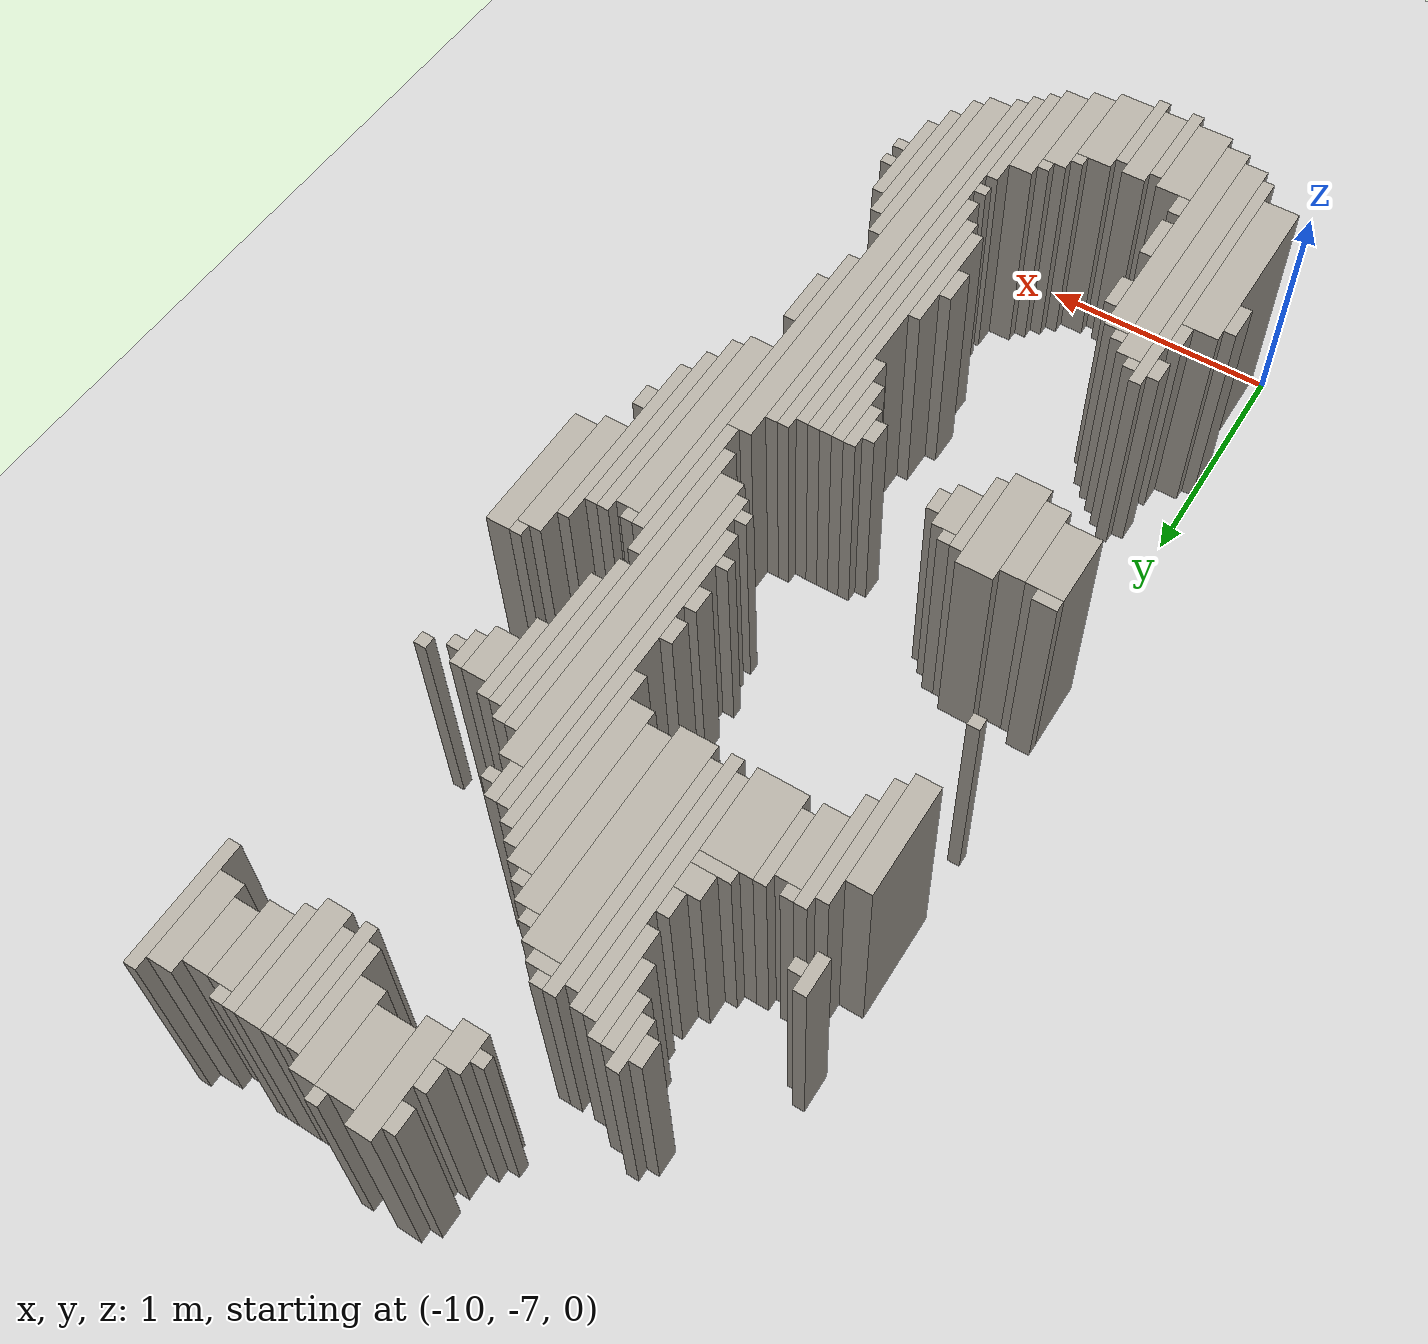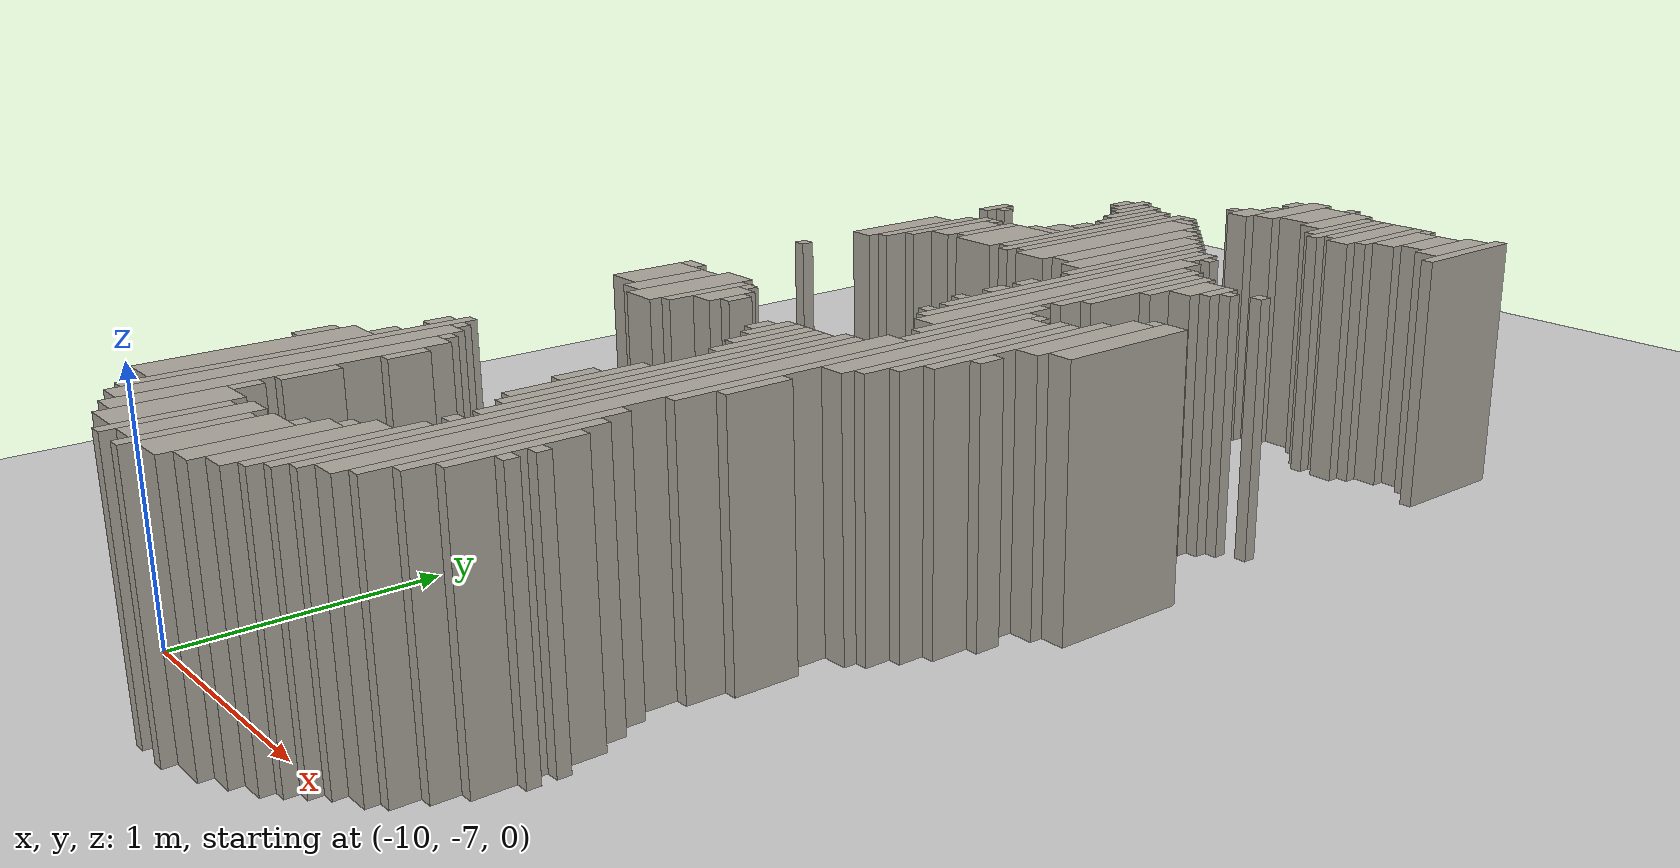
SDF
<sdf version="1.6">
 <world name="fr079_office">
  <include><uri>model://sun</uri></include>
  <include><uri>model://ground_plane</uri></include>
  <model name="fr079_office_walls">
   <static>true</static>
   <link name="w0011">
    <pose>-9.373 -7.106 0.500 0 0 0</pose>
    <collision name="c"><geometry><box><size>0.050 0.400 1.000</size></box></geometry></collision>
    <visual name="v">
     <geometry><box><size>0.050 0.400 1.000</size></box></geometry>
     <material><ambient>0.68 0.66 0.62 1</ambient><diffuse>0.68 0.66 0.62 1</diffuse></material>
    </visual>
   </link>
   <link name="w0012">
    <pose>-9.223 -7.106 0.500 0 0 0</pose>
    <collision name="c"><geometry><box><size>0.050 0.400 1.000</size></box></geometry></collision>
    <visual name="v">
     <geometry><box><size>0.050 0.400 1.000</size></box></geometry>
     <material><ambient>0.68 0.66 0.62 1</ambient><diffuse>0.68 0.66 0.62 1</diffuse></material>
    </visual>
   </link>
   <link name="w0029">
    <pose>-9.473 -7.056 0.500 0 0 0</pose>
    <collision name="c"><geometry><box><size>0.150 0.400 1.000</size></box></geometry></collision>
    <visual name="v">
     <geometry><box><size>0.150 0.400 1.000</size></box></geometry>
     <material><ambient>0.68 0.66 0.62 1</ambient><diffuse>0.68 0.66 0.62 1</diffuse></material>
    </visual>
   </link>
   <link name="w0030">
    <pose>-9.298 -7.056 0.500 0 0 0</pose>
    <collision name="c"><geometry><box><size>0.100 0.400 1.000</size></box></geometry></collision>
    <visual name="v">
     <geometry><box><size>0.100 0.400 1.000</size></box></geometry>
     <material><ambient>0.68 0.66 0.62 1</ambient><diffuse>0.68 0.66 0.62 1</diffuse></material>
    </visual>
   </link>
   <link name="w0031">
    <pose>-9.123 -7.056 0.500 0 0 0</pose>
    <collision name="c"><geometry><box><size>0.150 0.400 1.000</size></box></geometry></collision>
    <visual name="v">
     <geometry><box><size>0.150 0.400 1.000</size></box></geometry>
     <material><ambient>0.68 0.66 0.62 1</ambient><diffuse>0.68 0.66 0.62 1</diffuse></material>
    </visual>
   </link>
   <link name="w0054">
    <pose>-9.598 -6.656 0.500 0 0 0</pose>
    <collision name="c"><geometry><box><size>0.100 1.100 1.000</size></box></geometry></collision>
    <visual name="v">
     <geometry><box><size>0.100 1.100 1.000</size></box></geometry>
     <material><ambient>0.68 0.66 0.62 1</ambient><diffuse>0.68 0.66 0.62 1</diffuse></material>
    </visual>
   </link>
   <link name="w0055">
    <pose>-8.998 -6.981 0.500 0 0 0</pose>
    <collision name="c"><geometry><box><size>0.100 0.450 1.000</size></box></geometry></collision>
    <visual name="v">
     <geometry><box><size>0.100 0.450 1.000</size></box></geometry>
     <material><ambient>0.68 0.66 0.62 1</ambient><diffuse>0.68 0.66 0.62 1</diffuse></material>
    </visual>
   </link>
   <link name="w0081">
    <pose>-9.698 -6.581 0.500 0 0 0</pose>
    <collision name="c"><geometry><box><size>0.100 1.150 1.000</size></box></geometry></collision>
    <visual name="v">
     <geometry><box><size>0.100 1.150 1.000</size></box></geometry>
     <material><ambient>0.68 0.66 0.62 1</ambient><diffuse>0.68 0.66 0.62 1</diffuse></material>
    </visual>
   </link>
   <link name="w0082">
    <pose>-8.898 -6.906 0.500 0 0 0</pose>
    <collision name="c"><geometry><box><size>0.100 0.500 1.000</size></box></geometry></collision>
    <visual name="v">
     <geometry><box><size>0.100 0.500 1.000</size></box></geometry>
     <material><ambient>0.68 0.66 0.62 1</ambient><diffuse>0.68 0.66 0.62 1</diffuse></material>
    </visual>
   </link>
   <link name="w0106">
    <pose>-9.773 -6.506 0.500 0 0 0</pose>
    <collision name="c"><geometry><box><size>0.050 1.200 1.000</size></box></geometry></collision>
    <visual name="v">
     <geometry><box><size>0.050 1.200 1.000</size></box></geometry>
     <material><ambient>0.68 0.66 0.62 1</ambient><diffuse>0.68 0.66 0.62 1</diffuse></material>
    </visual>
   </link>
   <link name="w0107">
    <pose>-8.823 -6.831 0.500 0 0 0</pose>
    <collision name="c"><geometry><box><size>0.050 0.550 1.000</size></box></geometry></collision>
    <visual name="v">
     <geometry><box><size>0.050 0.550 1.000</size></box></geometry>
     <material><ambient>0.68 0.66 0.62 1</ambient><diffuse>0.68 0.66 0.62 1</diffuse></material>
    </visual>
   </link>
   <link name="w0127">
    <pose>-8.773 -6.056 0.500 0 0 0</pose>
    <collision name="c"><geometry><box><size>0.050 2.000 1.000</size></box></geometry></collision>
    <visual name="v">
     <geometry><box><size>0.050 2.000 1.000</size></box></geometry>
     <material><ambient>0.68 0.66 0.62 1</ambient><diffuse>0.68 0.66 0.62 1</diffuse></material>
    </visual>
   </link>
   <link name="w0138">
    <pose>-9.873 -6.631 0.500 0 0 0</pose>
    <collision name="c"><geometry><box><size>0.150 0.750 1.000</size></box></geometry></collision>
    <visual name="v">
     <geometry><box><size>0.150 0.750 1.000</size></box></geometry>
     <material><ambient>0.68 0.66 0.62 1</ambient><diffuse>0.68 0.66 0.62 1</diffuse></material>
    </visual>
   </link>
   <link name="w0139">
    <pose>-8.723 -6.031 0.500 0 0 0</pose>
    <collision name="c"><geometry><box><size>0.050 1.950 1.000</size></box></geometry></collision>
    <visual name="v">
     <geometry><box><size>0.050 1.950 1.000</size></box></geometry>
     <material><ambient>0.68 0.66 0.62 1</ambient><diffuse>0.68 0.66 0.62 1</diffuse></material>
    </visual>
   </link>
   <link name="w0153">
    <pose>-8.648 -5.956 0.500 0 0 0</pose>
    <collision name="c"><geometry><box><size>0.100 2.000 1.000</size></box></geometry></collision>
    <visual name="v">
     <geometry><box><size>0.100 2.000 1.000</size></box></geometry>
     <material><ambient>0.68 0.66 0.62 1</ambient><diffuse>0.68 0.66 0.62 1</diffuse></material>
    </visual>
   </link>
   <link name="w0163">
    <pose>-8.573 -6.481 0.500 0 0 0</pose>
    <collision name="c"><geometry><box><size>0.050 0.850 1.000</size></box></geometry></collision>
    <visual name="v">
     <geometry><box><size>0.050 0.850 1.000</size></box></geometry>
     <material><ambient>0.68 0.66 0.62 1</ambient><diffuse>0.68 0.66 0.62 1</diffuse></material>
    </visual>
   </link>
   <link name="w0180">
    <pose>-9.523 -6.806 0.500 0 0 0</pose>
    <collision name="c"><geometry><box><size>0.050 0.100 1.000</size></box></geometry></collision>
    <visual name="v">
     <geometry><box><size>0.050 0.100 1.000</size></box></geometry>
     <material><ambient>0.68 0.66 0.62 1</ambient><diffuse>0.68 0.66 0.62 1</diffuse></material>
    </visual>
   </link>
   <link name="w0181">
    <pose>-9.073 -6.831 0.500 0 0 0</pose>
    <collision name="c"><geometry><box><size>0.050 0.050 1.000</size></box></geometry></collision>
    <visual name="v">
     <geometry><box><size>0.050 0.050 1.000</size></box></geometry>
     <material><ambient>0.68 0.66 0.62 1</ambient><diffuse>0.68 0.66 0.62 1</diffuse></material>
    </visual>
   </link>
   <link name="w0200">
    <pose>-8.523 -6.481 0.500 0 0 0</pose>
    <collision name="c"><geometry><box><size>0.050 0.650 1.000</size></box></geometry></collision>
    <visual name="v">
     <geometry><box><size>0.050 0.650 1.000</size></box></geometry>
     <material><ambient>0.68 0.66 0.62 1</ambient><diffuse>0.68 0.66 0.62 1</diffuse></material>
    </visual>
   </link>
   <link name="w0214">
    <pose>-8.973 -6.731 0.500 0 0 0</pose>
    <collision name="c"><geometry><box><size>0.050 0.050 1.000</size></box></geometry></collision>
    <visual name="v">
     <geometry><box><size>0.050 0.050 1.000</size></box></geometry>
     <material><ambient>0.68 0.66 0.62 1</ambient><diffuse>0.68 0.66 0.62 1</diffuse></material>
    </visual>
   </link>
   <link name="w0235">
    <pose>-9.523 -6.606 0.500 0 0 0</pose>
    <collision name="c"><geometry><box><size>0.050 0.200 1.000</size></box></geometry></collision>
    <visual name="v">
     <geometry><box><size>0.050 0.200 1.000</size></box></geometry>
     <material><ambient>0.68 0.66 0.62 1</ambient><diffuse>0.68 0.66 0.62 1</diffuse></material>
    </visual>
   </link>
   <link name="w0236">
    <pose>-8.473 -6.481 0.500 0 0 0</pose>
    <collision name="c"><geometry><box><size>0.050 0.450 1.000</size></box></geometry></collision>
    <visual name="v">
     <geometry><box><size>0.050 0.450 1.000</size></box></geometry>
     <material><ambient>0.68 0.66 0.62 1</ambient><diffuse>0.68 0.66 0.62 1</diffuse></material>
    </visual>
   </link>
   <link name="w0270">
    <pose>-8.423 -6.531 0.500 0 0 0</pose>
    <collision name="c"><geometry><box><size>0.050 0.050 1.000</size></box></geometry></collision>
    <visual name="v">
     <geometry><box><size>0.050 0.050 1.000</size></box></geometry>
     <material><ambient>0.68 0.66 0.62 1</ambient><diffuse>0.68 0.66 0.62 1</diffuse></material>
    </visual>
   </link>
   <link name="w0283">
    <pose>-8.823 -6.481 0.500 0 0 0</pose>
    <collision name="c"><geometry><box><size>0.050 0.050 1.000</size></box></geometry></collision>
    <visual name="v">
     <geometry><box><size>0.050 0.050 1.000</size></box></geometry>
     <material><ambient>0.68 0.66 0.62 1</ambient><diffuse>0.68 0.66 0.62 1</diffuse></material>
    </visual>
   </link>
   <link name="w0300">
    <pose>-9.973 -6.381 0.500 0 0 0</pose>
    <collision name="c"><geometry><box><size>0.050 0.150 1.000</size></box></geometry></collision>
    <visual name="v">
     <geometry><box><size>0.050 0.150 1.000</size></box></geometry>
     <material><ambient>0.68 0.66 0.62 1</ambient><diffuse>0.68 0.66 0.62 1</diffuse></material>
    </visual>
   </link>
   <link name="w0301">
    <pose>-8.423 -6.431 0.500 0 0 0</pose>
    <collision name="c"><geometry><box><size>0.050 0.050 1.000</size></box></geometry></collision>
    <visual name="v">
     <geometry><box><size>0.050 0.050 1.000</size></box></geometry>
     <material><ambient>0.68 0.66 0.62 1</ambient><diffuse>0.68 0.66 0.62 1</diffuse></material>
    </visual>
   </link>
   <link name="w0318">
    <pose>-8.823 -5.756 0.500 0 0 0</pose>
    <collision name="c"><geometry><box><size>0.050 1.300 1.000</size></box></geometry></collision>
    <visual name="v">
     <geometry><box><size>0.050 1.300 1.000</size></box></geometry>
     <material><ambient>0.68 0.66 0.62 1</ambient><diffuse>0.68 0.66 0.62 1</diffuse></material>
    </visual>
   </link>
   <link name="w0338">
    <pose>-9.523 -6.281 0.500 0 0 0</pose>
    <collision name="c"><geometry><box><size>0.050 0.150 1.000</size></box></geometry></collision>
    <visual name="v">
     <geometry><box><size>0.050 0.150 1.000</size></box></geometry>
     <material><ambient>0.68 0.66 0.62 1</ambient><diffuse>0.68 0.66 0.62 1</diffuse></material>
    </visual>
   </link>
   <link name="w0352">
    <pose>-8.873 -5.706 0.500 0 0 0</pose>
    <collision name="c"><geometry><box><size>0.050 1.200 1.000</size></box></geometry></collision>
    <visual name="v">
     <geometry><box><size>0.050 1.200 1.000</size></box></geometry>
     <material><ambient>0.68 0.66 0.62 1</ambient><diffuse>0.68 0.66 0.62 1</diffuse></material>
    </visual>
   </link>
   <link name="w0361">
    <pose>-9.823 -6.206 0.500 0 0 0</pose>
    <collision name="c"><geometry><box><size>0.050 0.100 1.000</size></box></geometry></collision>
    <visual name="v">
     <geometry><box><size>0.050 0.100 1.000</size></box></geometry>
     <material><ambient>0.68 0.66 0.62 1</ambient><diffuse>0.68 0.66 0.62 1</diffuse></material>
    </visual>
   </link>
   <link name="w0362">
    <pose>-8.923 -6.006 0.500 0 0 0</pose>
    <collision name="c"><geometry><box><size>0.050 0.500 1.000</size></box></geometry></collision>
    <visual name="v">
     <geometry><box><size>0.050 0.500 1.000</size></box></geometry>
     <material><ambient>0.68 0.66 0.62 1</ambient><diffuse>0.68 0.66 0.62 1</diffuse></material>
    </visual>
   </link>
   <link name="w0394">
    <pose>-9.623 -6.081 0.500 0 0 0</pose>
    <collision name="c"><geometry><box><size>0.050 0.050 1.000</size></box></geometry></collision>
    <visual name="v">
     <geometry><box><size>0.050 0.050 1.000</size></box></geometry>
     <material><ambient>0.68 0.66 0.62 1</ambient><diffuse>0.68 0.66 0.62 1</diffuse></material>
    </visual>
   </link>
   <link name="w0406">
    <pose>-9.823 -6.006 0.500 0 0 0</pose>
    <collision name="c"><geometry><box><size>0.050 0.100 1.000</size></box></geometry></collision>
    <visual name="v">
     <geometry><box><size>0.050 0.100 1.000</size></box></geometry>
     <material><ambient>0.68 0.66 0.62 1</ambient><diffuse>0.68 0.66 0.62 1</diffuse></material>
    </visual>
   </link>
   <link name="w0407">
    <pose>-8.973 -5.981 0.500 0 0 0</pose>
    <collision name="c"><geometry><box><size>0.050 0.150 1.000</size></box></geometry></collision>
    <visual name="v">
     <geometry><box><size>0.050 0.150 1.000</size></box></geometry>
     <material><ambient>0.68 0.66 0.62 1</ambient><diffuse>0.68 0.66 0.62 1</diffuse></material>
    </visual>
   </link>
   <link name="w0421">
    <pose>-9.723 -5.981 0.500 0 0 0</pose>
    <collision name="c"><geometry><box><size>0.050 0.050 1.000</size></box></geometry></collision>
    <visual name="v">
     <geometry><box><size>0.050 0.050 1.000</size></box></geometry>
     <material><ambient>0.68 0.66 0.62 1</ambient><diffuse>0.68 0.66 0.62 1</diffuse></material>
    </visual>
   </link>
   <link name="w0449">
    <pose>-8.573 -5.156 0.500 0 0 0</pose>
    <collision name="c"><geometry><box><size>0.050 1.500 1.000</size></box></geometry></collision>
    <visual name="v">
     <geometry><box><size>0.050 1.500 1.000</size></box></geometry>
     <material><ambient>0.68 0.66 0.62 1</ambient><diffuse>0.68 0.66 0.62 1</diffuse></material>
    </visual>
   </link>
   <link name="w0493">
    <pose>-8.523 -5.631 0.500 0 0 0</pose>
    <collision name="c"><geometry><box><size>0.050 0.250 1.000</size></box></geometry></collision>
    <visual name="v">
     <geometry><box><size>0.050 0.250 1.000</size></box></geometry>
     <material><ambient>0.68 0.66 0.62 1</ambient><diffuse>0.68 0.66 0.62 1</diffuse></material>
    </visual>
   </link>
   <link name="w0555">
    <pose>-8.923 -5.306 0.500 0 0 0</pose>
    <collision name="c"><geometry><box><size>0.050 0.400 1.000</size></box></geometry></collision>
    <visual name="v">
     <geometry><box><size>0.050 0.400 1.000</size></box></geometry>
     <material><ambient>0.68 0.66 0.62 1</ambient><diffuse>0.68 0.66 0.62 1</diffuse></material>
    </visual>
   </link>
   <link name="w0574">
    <pose>-8.973 -5.256 0.500 0 0 0</pose>
    <collision name="c"><geometry><box><size>0.050 0.300 1.000</size></box></geometry></collision>
    <visual name="v">
     <geometry><box><size>0.050 0.300 1.000</size></box></geometry>
     <material><ambient>0.68 0.66 0.62 1</ambient><diffuse>0.68 0.66 0.62 1</diffuse></material>
    </visual>
   </link>
   <link name="w0587">
    <pose>-8.498 -4.906 0.500 0 0 0</pose>
    <collision name="c"><geometry><box><size>0.100 0.900 1.000</size></box></geometry></collision>
    <visual name="v">
     <geometry><box><size>0.100 0.900 1.000</size></box></geometry>
     <material><ambient>0.68 0.66 0.62 1</ambient><diffuse>0.68 0.66 0.62 1</diffuse></material>
    </visual>
   </link>
   <link name="w0602">
    <pose>-9.673 -5.081 0.500 0 0 0</pose>
    <collision name="c"><geometry><box><size>0.150 0.450 1.000</size></box></geometry></collision>
    <visual name="v">
     <geometry><box><size>0.150 0.450 1.000</size></box></geometry>
     <material><ambient>0.68 0.66 0.62 1</ambient><diffuse>0.68 0.66 0.62 1</diffuse></material>
    </visual>
   </link>
   <link name="w0603">
    <pose>-9.023 -5.206 0.500 0 0 0</pose>
    <collision name="c"><geometry><box><size>0.050 0.200 1.000</size></box></geometry></collision>
    <visual name="v">
     <geometry><box><size>0.050 0.200 1.000</size></box></geometry>
     <material><ambient>0.68 0.66 0.62 1</ambient><diffuse>0.68 0.66 0.62 1</diffuse></material>
    </visual>
   </link>
   <link name="w0604">
    <pose>-8.423 -4.856 0.500 0 0 0</pose>
    <collision name="c"><geometry><box><size>0.050 0.900 1.000</size></box></geometry></collision>
    <visual name="v">
     <geometry><box><size>0.050 0.900 1.000</size></box></geometry>
     <material><ambient>0.68 0.66 0.62 1</ambient><diffuse>0.68 0.66 0.62 1</diffuse></material>
    </visual>
   </link>
   <link name="w0615">
    <pose>-9.798 -5.081 0.500 0 0 0</pose>
    <collision name="c"><geometry><box><size>0.100 0.350 1.000</size></box></geometry></collision>
    <visual name="v">
     <geometry><box><size>0.100 0.350 1.000</size></box></geometry>
     <material><ambient>0.68 0.66 0.62 1</ambient><diffuse>0.68 0.66 0.62 1</diffuse></material>
    </visual>
   </link>
   <link name="w0616">
    <pose>-9.573 -5.081 0.500 0 0 0</pose>
    <collision name="c"><geometry><box><size>0.050 0.350 1.000</size></box></geometry></collision>
    <visual name="v">
     <geometry><box><size>0.050 0.350 1.000</size></box></geometry>
     <material><ambient>0.68 0.66 0.62 1</ambient><diffuse>0.68 0.66 0.62 1</diffuse></material>
    </visual>
   </link>
   <link name="w0617">
    <pose>-9.073 -5.206 0.500 0 0 0</pose>
    <collision name="c"><geometry><box><size>0.050 0.100 1.000</size></box></geometry></collision>
    <visual name="v">
     <geometry><box><size>0.050 0.100 1.000</size></box></geometry>
     <material><ambient>0.68 0.66 0.62 1</ambient><diffuse>0.68 0.66 0.62 1</diffuse></material>
    </visual>
   </link>
   <link name="w0632">
    <pose>-9.923 -5.056 0.500 0 0 0</pose>
    <collision name="c"><geometry><box><size>0.150 0.300 1.000</size></box></geometry></collision>
    <visual name="v">
     <geometry><box><size>0.150 0.300 1.000</size></box></geometry>
     <material><ambient>0.68 0.66 0.62 1</ambient><diffuse>0.68 0.66 0.62 1</diffuse></material>
    </visual>
   </link>
   <link name="w0633">
    <pose>-8.373 -4.806 0.500 0 0 0</pose>
    <collision name="c"><geometry><box><size>0.050 0.800 1.000</size></box></geometry></collision>
    <visual name="v">
     <geometry><box><size>0.050 0.800 1.000</size></box></geometry>
     <material><ambient>0.68 0.66 0.62 1</ambient><diffuse>0.68 0.66 0.62 1</diffuse></material>
    </visual>
   </link>
   <link name="w0649">
    <pose>-9.498 -5.056 0.500 0 0 0</pose>
    <collision name="c"><geometry><box><size>0.100 0.200 1.000</size></box></geometry></collision>
    <visual name="v">
     <geometry><box><size>0.100 0.200 1.000</size></box></geometry>
     <material><ambient>0.68 0.66 0.62 1</ambient><diffuse>0.68 0.66 0.62 1</diffuse></material>
    </visual>
   </link>
   <link name="w0660">
    <pose>-9.423 -5.056 0.500 0 0 0</pose>
    <collision name="c"><geometry><box><size>0.050 0.100 1.000</size></box></geometry></collision>
    <visual name="v">
     <geometry><box><size>0.050 0.100 1.000</size></box></geometry>
     <material><ambient>0.68 0.66 0.62 1</ambient><diffuse>0.68 0.66 0.62 1</diffuse></material>
    </visual>
   </link>
   <link name="w0661">
    <pose>-8.323 -4.706 0.500 0 0 0</pose>
    <collision name="c"><geometry><box><size>0.050 0.800 1.000</size></box></geometry></collision>
    <visual name="v">
     <geometry><box><size>0.050 0.800 1.000</size></box></geometry>
     <material><ambient>0.68 0.66 0.62 1</ambient><diffuse>0.68 0.66 0.62 1</diffuse></material>
    </visual>
   </link>
   <link name="w0690">
    <pose>-9.523 -4.931 0.500 0 0 0</pose>
    <collision name="c"><geometry><box><size>0.050 0.050 1.000</size></box></geometry></collision>
    <visual name="v">
     <geometry><box><size>0.050 0.050 1.000</size></box></geometry>
     <material><ambient>0.68 0.66 0.62 1</ambient><diffuse>0.68 0.66 0.62 1</diffuse></material>
    </visual>
   </link>
   <link name="w0691">
    <pose>-8.623 -4.631 0.500 0 0 0</pose>
    <collision name="c"><geometry><box><size>0.050 0.650 1.000</size></box></geometry></collision>
    <visual name="v">
     <geometry><box><size>0.050 0.650 1.000</size></box></geometry>
     <material><ambient>0.68 0.66 0.62 1</ambient><diffuse>0.68 0.66 0.62 1</diffuse></material>
    </visual>
   </link>
   <link name="w0692">
    <pose>-8.273 -4.906 0.500 0 0 0</pose>
    <collision name="c"><geometry><box><size>0.050 0.100 1.000</size></box></geometry></collision>
    <visual name="v">
     <geometry><box><size>0.050 0.100 1.000</size></box></geometry>
     <material><ambient>0.68 0.66 0.62 1</ambient><diffuse>0.68 0.66 0.62 1</diffuse></material>
    </visual>
   </link>
   <link name="w0701">
    <pose>-9.948 -4.881 0.500 0 0 0</pose>
    <collision name="c"><geometry><box><size>0.100 0.050 1.000</size></box></geometry></collision>
    <visual name="v">
     <geometry><box><size>0.100 0.050 1.000</size></box></geometry>
     <material><ambient>0.68 0.66 0.62 1</ambient><diffuse>0.68 0.66 0.62 1</diffuse></material>
    </visual>
   </link>
   <link name="w0714">
    <pose>-8.673 -4.181 0.500 0 0 0</pose>
    <collision name="c"><geometry><box><size>0.050 1.350 1.000</size></box></geometry></collision>
    <visual name="v">
     <geometry><box><size>0.050 1.350 1.000</size></box></geometry>
     <material><ambient>0.68 0.66 0.62 1</ambient><diffuse>0.68 0.66 0.62 1</diffuse></material>
    </visual>
   </link>
   <link name="w0739">
    <pose>-8.748 -4.081 0.500 0 0 0</pose>
    <collision name="c"><geometry><box><size>0.100 1.350 1.000</size></box></geometry></collision>
    <visual name="v">
     <geometry><box><size>0.100 1.350 1.000</size></box></geometry>
     <material><ambient>0.68 0.66 0.62 1</ambient><diffuse>0.68 0.66 0.62 1</diffuse></material>
    </visual>
   </link>
   <link name="w0740">
    <pose>-8.248 -4.481 0.500 0 0 0</pose>
    <collision name="c"><geometry><box><size>0.100 0.550 1.000</size></box></geometry></collision>
    <visual name="v">
     <geometry><box><size>0.100 0.550 1.000</size></box></geometry>
     <material><ambient>0.68 0.66 0.62 1</ambient><diffuse>0.68 0.66 0.62 1</diffuse></material>
    </visual>
   </link>
   <link name="w0753">
    <pose>-8.823 -3.981 0.500 0 0 0</pose>
    <collision name="c"><geometry><box><size>0.050 1.450 1.000</size></box></geometry></collision>
    <visual name="v">
     <geometry><box><size>0.050 1.450 1.000</size></box></geometry>
     <material><ambient>0.68 0.66 0.62 1</ambient><diffuse>0.68 0.66 0.62 1</diffuse></material>
    </visual>
   </link>
   <link name="w0754">
    <pose>-8.148 -4.431 0.500 0 0 0</pose>
    <collision name="c"><geometry><box><size>0.100 0.550 1.000</size></box></geometry></collision>
    <visual name="v">
     <geometry><box><size>0.100 0.550 1.000</size></box></geometry>
     <material><ambient>0.68 0.66 0.62 1</ambient><diffuse>0.68 0.66 0.62 1</diffuse></material>
    </visual>
   </link>
   <link name="w0766">
    <pose>-8.873 -4.631 0.500 0 0 0</pose>
    <collision name="c"><geometry><box><size>0.050 0.050 1.000</size></box></geometry></collision>
    <visual name="v">
     <geometry><box><size>0.050 0.050 1.000</size></box></geometry>
     <material><ambient>0.68 0.66 0.62 1</ambient><diffuse>0.68 0.66 0.62 1</diffuse></material>
    </visual>
   </link>
   <link name="w0800">
    <pose>-8.873 -3.881 0.500 0 0 0</pose>
    <collision name="c"><geometry><box><size>0.050 1.350 1.000</size></box></geometry></collision>
    <visual name="v">
     <geometry><box><size>0.050 1.350 1.000</size></box></geometry>
     <material><ambient>0.68 0.66 0.62 1</ambient><diffuse>0.68 0.66 0.62 1</diffuse></material>
    </visual>
   </link>
   <link name="w0833">
    <pose>-8.923 -4.431 0.500 0 0 0</pose>
    <collision name="c"><geometry><box><size>0.050 0.050 1.000</size></box></geometry></collision>
    <visual name="v">
     <geometry><box><size>0.050 0.050 1.000</size></box></geometry>
     <material><ambient>0.68 0.66 0.62 1</ambient><diffuse>0.68 0.66 0.62 1</diffuse></material>
    </visual>
   </link>
   <link name="w0834">
    <pose>-8.523 -4.431 0.500 0 0 0</pose>
    <collision name="c"><geometry><box><size>0.050 0.050 1.000</size></box></geometry></collision>
    <visual name="v">
     <geometry><box><size>0.050 0.050 1.000</size></box></geometry>
     <material><ambient>0.68 0.66 0.62 1</ambient><diffuse>0.68 0.66 0.62 1</diffuse></material>
    </visual>
   </link>
   <link name="w0862">
    <pose>-9.973 -4.331 0.500 0 0 0</pose>
    <collision name="c"><geometry><box><size>0.050 0.050 1.000</size></box></geometry></collision>
    <visual name="v">
     <geometry><box><size>0.050 0.050 1.000</size></box></geometry>
     <material><ambient>0.68 0.66 0.62 1</ambient><diffuse>0.68 0.66 0.62 1</diffuse></material>
    </visual>
   </link>
   <link name="w0876">
    <pose>-8.923 -4.256 0.500 0 0 0</pose>
    <collision name="c"><geometry><box><size>0.050 0.100 1.000</size></box></geometry></collision>
    <visual name="v">
     <geometry><box><size>0.050 0.100 1.000</size></box></geometry>
     <material><ambient>0.68 0.66 0.62 1</ambient><diffuse>0.68 0.66 0.62 1</diffuse></material>
    </visual>
   </link>
   <link name="w0888">
    <pose>-8.623 -3.881 0.500 0 0 0</pose>
    <collision name="c"><geometry><box><size>0.050 0.750 1.000</size></box></geometry></collision>
    <visual name="v">
     <geometry><box><size>0.050 0.750 1.000</size></box></geometry>
     <material><ambient>0.68 0.66 0.62 1</ambient><diffuse>0.68 0.66 0.62 1</diffuse></material>
    </visual>
   </link>
   <link name="w0907">
    <pose>-8.223 -4.181 0.500 0 0 0</pose>
    <collision name="c"><geometry><box><size>0.050 0.050 1.000</size></box></geometry></collision>
    <visual name="v">
     <geometry><box><size>0.050 0.050 1.000</size></box></geometry>
     <material><ambient>0.68 0.66 0.62 1</ambient><diffuse>0.68 0.66 0.62 1</diffuse></material>
    </visual>
   </link>
   <link name="w0925">
    <pose>-8.923 -4.106 0.500 0 0 0</pose>
    <collision name="c"><geometry><box><size>0.050 0.100 1.000</size></box></geometry></collision>
    <visual name="v">
     <geometry><box><size>0.050 0.100 1.000</size></box></geometry>
     <material><ambient>0.68 0.66 0.62 1</ambient><diffuse>0.68 0.66 0.62 1</diffuse></material>
    </visual>
   </link>
   <link name="w0926">
    <pose>-8.573 -3.856 0.500 0 0 0</pose>
    <collision name="c"><geometry><box><size>0.050 0.600 1.000</size></box></geometry></collision>
    <visual name="v">
     <geometry><box><size>0.050 0.600 1.000</size></box></geometry>
     <material><ambient>0.68 0.66 0.62 1</ambient><diffuse>0.68 0.66 0.62 1</diffuse></material>
    </visual>
   </link>
   <link name="w0954">
    <pose>-9.948 -3.831 0.500 0 0 0</pose>
    <collision name="c"><geometry><box><size>0.100 0.450 1.000</size></box></geometry></collision>
    <visual name="v">
     <geometry><box><size>0.100 0.450 1.000</size></box></geometry>
     <material><ambient>0.68 0.66 0.62 1</ambient><diffuse>0.68 0.66 0.62 1</diffuse></material>
    </visual>
   </link>
   <link name="w0962">
    <pose>-9.873 -3.756 0.500 0 0 0</pose>
    <collision name="c"><geometry><box><size>0.050 0.500 1.000</size></box></geometry></collision>
    <visual name="v">
     <geometry><box><size>0.050 0.500 1.000</size></box></geometry>
     <material><ambient>0.68 0.66 0.62 1</ambient><diffuse>0.68 0.66 0.62 1</diffuse></material>
    </visual>
   </link>
   <link name="w0992">
    <pose>-9.823 -3.681 0.500 0 0 0</pose>
    <collision name="c"><geometry><box><size>0.050 0.450 1.000</size></box></geometry></collision>
    <visual name="v">
     <geometry><box><size>0.050 0.450 1.000</size></box></geometry>
     <material><ambient>0.68 0.66 0.62 1</ambient><diffuse>0.68 0.66 0.62 1</diffuse></material>
    </visual>
   </link>
   <link name="w0993">
    <pose>-8.923 -3.531 0.500 0 0 0</pose>
    <collision name="c"><geometry><box><size>0.050 0.750 1.000</size></box></geometry></collision>
    <visual name="v">
     <geometry><box><size>0.050 0.750 1.000</size></box></geometry>
     <material><ambient>0.68 0.66 0.62 1</ambient><diffuse>0.68 0.66 0.62 1</diffuse></material>
    </visual>
   </link>
   <link name="w0994">
    <pose>-8.523 -3.731 0.500 0 0 0</pose>
    <collision name="c"><geometry><box><size>0.050 0.350 1.000</size></box></geometry></collision>
    <visual name="v">
     <geometry><box><size>0.050 0.350 1.000</size></box></geometry>
     <material><ambient>0.68 0.66 0.62 1</ambient><diffuse>0.68 0.66 0.62 1</diffuse></material>
    </visual>
   </link>
   <link name="w1016">
    <pose>-9.748 -3.656 0.500 0 0 0</pose>
    <collision name="c"><geometry><box><size>0.100 0.300 1.000</size></box></geometry></collision>
    <visual name="v">
     <geometry><box><size>0.100 0.300 1.000</size></box></geometry>
     <material><ambient>0.68 0.66 0.62 1</ambient><diffuse>0.68 0.66 0.62 1</diffuse></material>
    </visual>
   </link>
   <link name="w1017">
    <pose>-9.548 -3.631 0.500 0 0 0</pose>
    <collision name="c"><geometry><box><size>0.200 0.350 1.000</size></box></geometry></collision>
    <visual name="v">
     <geometry><box><size>0.200 0.350 1.000</size></box></geometry>
     <material><ambient>0.68 0.66 0.62 1</ambient><diffuse>0.68 0.66 0.62 1</diffuse></material>
    </visual>
   </link>
   <link name="w1018">
    <pose>-9.373 -3.331 0.500 0 0 0</pose>
    <collision name="c"><geometry><box><size>0.050 0.950 1.000</size></box></geometry></collision>
    <visual name="v">
     <geometry><box><size>0.050 0.950 1.000</size></box></geometry>
     <material><ambient>0.68 0.66 0.62 1</ambient><diffuse>0.68 0.66 0.62 1</diffuse></material>
    </visual>
   </link>
   <link name="w1019">
    <pose>-9.223 -3.356 0.500 0 0 0</pose>
    <collision name="c"><geometry><box><size>0.150 0.900 1.000</size></box></geometry></collision>
    <visual name="v">
     <geometry><box><size>0.150 0.900 1.000</size></box></geometry>
     <material><ambient>0.68 0.66 0.62 1</ambient><diffuse>0.68 0.66 0.62 1</diffuse></material>
    </visual>
   </link>
   <link name="w1020">
    <pose>-8.998 -3.456 0.500 0 0 0</pose>
    <collision name="c"><geometry><box><size>0.100 0.700 1.000</size></box></geometry></collision>
    <visual name="v">
     <geometry><box><size>0.100 0.700 1.000</size></box></geometry>
     <material><ambient>0.68 0.66 0.62 1</ambient><diffuse>0.68 0.66 0.62 1</diffuse></material>
    </visual>
   </link>
   <link name="w1021">
    <pose>-8.448 -3.706 0.500 0 0 0</pose>
    <collision name="c"><geometry><box><size>0.100 0.200 1.000</size></box></geometry></collision>
    <visual name="v">
     <geometry><box><size>0.100 0.200 1.000</size></box></geometry>
     <material><ambient>0.68 0.66 0.62 1</ambient><diffuse>0.68 0.66 0.62 1</diffuse></material>
    </visual>
   </link>
   <link name="w1027">
    <pose>-9.673 -3.606 0.500 0 0 0</pose>
    <collision name="c"><geometry><box><size>0.050 0.300 1.000</size></box></geometry></collision>
    <visual name="v">
     <geometry><box><size>0.050 0.300 1.000</size></box></geometry>
     <material><ambient>0.68 0.66 0.62 1</ambient><diffuse>0.68 0.66 0.62 1</diffuse></material>
    </visual>
   </link>
   <link name="w1028">
    <pose>-9.423 -3.281 0.500 0 0 0</pose>
    <collision name="c"><geometry><box><size>0.050 0.950 1.000</size></box></geometry></collision>
    <visual name="v">
     <geometry><box><size>0.050 0.950 1.000</size></box></geometry>
     <material><ambient>0.68 0.66 0.62 1</ambient><diffuse>0.68 0.66 0.62 1</diffuse></material>
    </visual>
   </link>
   <link name="w1029">
    <pose>-9.323 -3.281 0.500 0 0 0</pose>
    <collision name="c"><geometry><box><size>0.050 0.950 1.000</size></box></geometry></collision>
    <visual name="v">
     <geometry><box><size>0.050 0.950 1.000</size></box></geometry>
     <material><ambient>0.68 0.66 0.62 1</ambient><diffuse>0.68 0.66 0.62 1</diffuse></material>
    </visual>
   </link>
   <link name="w1030">
    <pose>-9.098 -3.381 0.500 0 0 0</pose>
    <collision name="c"><geometry><box><size>0.100 0.750 1.000</size></box></geometry></collision>
    <visual name="v">
     <geometry><box><size>0.100 0.750 1.000</size></box></geometry>
     <material><ambient>0.68 0.66 0.62 1</ambient><diffuse>0.68 0.66 0.62 1</diffuse></material>
    </visual>
   </link>
   <link name="w1031">
    <pose>-8.373 -3.681 0.500 0 0 0</pose>
    <collision name="c"><geometry><box><size>0.050 0.150 1.000</size></box></geometry></collision>
    <visual name="v">
     <geometry><box><size>0.050 0.150 1.000</size></box></geometry>
     <material><ambient>0.68 0.66 0.62 1</ambient><diffuse>0.68 0.66 0.62 1</diffuse></material>
    </visual>
   </link>
   <link name="w1042">
    <pose>-8.323 -3.681 0.500 0 0 0</pose>
    <collision name="c"><geometry><box><size>0.050 0.050 1.000</size></box></geometry></collision>
    <visual name="v">
     <geometry><box><size>0.050 0.050 1.000</size></box></geometry>
     <material><ambient>0.68 0.66 0.62 1</ambient><diffuse>0.68 0.66 0.62 1</diffuse></material>
    </visual>
   </link>
   <link name="w1056">
    <pose>-8.223 -3.631 0.500 0 0 0</pose>
    <collision name="c"><geometry><box><size>0.050 0.050 1.000</size></box></geometry></collision>
    <visual name="v">
     <geometry><box><size>0.050 0.050 1.000</size></box></geometry>
     <material><ambient>0.68 0.66 0.62 1</ambient><diffuse>0.68 0.66 0.62 1</diffuse></material>
    </visual>
   </link>
   <link name="w1080">
    <pose>-9.773 -3.481 0.500 0 0 0</pose>
    <collision name="c"><geometry><box><size>0.050 0.050 1.000</size></box></geometry></collision>
    <visual name="v">
     <geometry><box><size>0.050 0.050 1.000</size></box></geometry>
     <material><ambient>0.68 0.66 0.62 1</ambient><diffuse>0.68 0.66 0.62 1</diffuse></material>
    </visual>
   </link>
   <link name="w1089">
    <pose>-9.523 -3.431 0.500 0 0 0</pose>
    <collision name="c"><geometry><box><size>0.150 0.050 1.000</size></box></geometry></collision>
    <visual name="v">
     <geometry><box><size>0.150 0.050 1.000</size></box></geometry>
     <material><ambient>0.68 0.66 0.62 1</ambient><diffuse>0.68 0.66 0.62 1</diffuse></material>
    </visual>
   </link>
   <link name="w1095">
    <pose>-9.498 -3.356 0.500 0 0 0</pose>
    <collision name="c"><geometry><box><size>0.100 0.100 1.000</size></box></geometry></collision>
    <visual name="v">
     <geometry><box><size>0.100 0.100 1.000</size></box></geometry>
     <material><ambient>0.68 0.66 0.62 1</ambient><diffuse>0.68 0.66 0.62 1</diffuse></material>
    </visual>
   </link>
   <link name="w1096">
    <pose>-8.773 -3.331 0.500 0 0 0</pose>
    <collision name="c"><geometry><box><size>0.050 0.150 1.000</size></box></geometry></collision>
    <visual name="v">
     <geometry><box><size>0.050 0.150 1.000</size></box></geometry>
     <material><ambient>0.68 0.66 0.62 1</ambient><diffuse>0.68 0.66 0.62 1</diffuse></material>
    </visual>
   </link>
   <link name="w1103">
    <pose>-9.973 -3.281 0.500 0 0 0</pose>
    <collision name="c"><geometry><box><size>0.050 0.150 1.000</size></box></geometry></collision>
    <visual name="v">
     <geometry><box><size>0.050 0.150 1.000</size></box></geometry>
     <material><ambient>0.68 0.66 0.62 1</ambient><diffuse>0.68 0.66 0.62 1</diffuse></material>
    </visual>
   </link>
   <link name="w1104">
    <pose>-8.723 -3.331 0.500 0 0 0</pose>
    <collision name="c"><geometry><box><size>0.050 0.050 1.000</size></box></geometry></collision>
    <visual name="v">
     <geometry><box><size>0.050 0.050 1.000</size></box></geometry>
     <material><ambient>0.68 0.66 0.62 1</ambient><diffuse>0.68 0.66 0.62 1</diffuse></material>
    </visual>
   </link>
   <link name="w1109">
    <pose>-9.923 -3.281 0.500 0 0 0</pose>
    <collision name="c"><geometry><box><size>0.050 0.050 1.000</size></box></geometry></collision>
    <visual name="v">
     <geometry><box><size>0.050 0.050 1.000</size></box></geometry>
     <material><ambient>0.68 0.66 0.62 1</ambient><diffuse>0.68 0.66 0.62 1</diffuse></material>
    </visual>
   </link>
   <link name="w1110">
    <pose>-9.473 -3.256 0.500 0 0 0</pose>
    <collision name="c"><geometry><box><size>0.050 0.100 1.000</size></box></geometry></collision>
    <visual name="v">
     <geometry><box><size>0.050 0.100 1.000</size></box></geometry>
     <material><ambient>0.68 0.66 0.62 1</ambient><diffuse>0.68 0.66 0.62 1</diffuse></material>
    </visual>
   </link>
   <link name="w1123">
    <pose>-9.473 -2.981 0.500 0 0 0</pose>
    <collision name="c"><geometry><box><size>0.050 0.350 1.000</size></box></geometry></collision>
    <visual name="v">
     <geometry><box><size>0.050 0.350 1.000</size></box></geometry>
     <material><ambient>0.68 0.66 0.62 1</ambient><diffuse>0.68 0.66 0.62 1</diffuse></material>
    </visual>
   </link>
   <link name="w1130">
    <pose>-9.023 -3.081 0.500 0 0 0</pose>
    <collision name="c"><geometry><box><size>0.050 0.050 1.000</size></box></geometry></collision>
    <visual name="v">
     <geometry><box><size>0.050 0.050 1.000</size></box></geometry>
     <material><ambient>0.68 0.66 0.62 1</ambient><diffuse>0.68 0.66 0.62 1</diffuse></material>
    </visual>
   </link>
   <link name="w1140">
    <pose>-9.523 -2.906 0.500 0 0 0</pose>
    <collision name="c"><geometry><box><size>0.050 0.300 1.000</size></box></geometry></collision>
    <visual name="v">
     <geometry><box><size>0.050 0.300 1.000</size></box></geometry>
     <material><ambient>0.68 0.66 0.62 1</ambient><diffuse>0.68 0.66 0.62 1</diffuse></material>
    </visual>
   </link>
   <link name="w1149">
    <pose>-9.123 -2.981 0.500 0 0 0</pose>
    <collision name="c"><geometry><box><size>0.050 0.050 1.000</size></box></geometry></collision>
    <visual name="v">
     <geometry><box><size>0.050 0.050 1.000</size></box></geometry>
     <material><ambient>0.68 0.66 0.62 1</ambient><diffuse>0.68 0.66 0.62 1</diffuse></material>
    </visual>
   </link>
   <link name="w1160">
    <pose>-9.573 -2.856 0.500 0 0 0</pose>
    <collision name="c"><geometry><box><size>0.050 0.200 1.000</size></box></geometry></collision>
    <visual name="v">
     <geometry><box><size>0.050 0.200 1.000</size></box></geometry>
     <material><ambient>0.68 0.66 0.62 1</ambient><diffuse>0.68 0.66 0.62 1</diffuse></material>
    </visual>
   </link>
   <link name="w1173">
    <pose>-9.623 -2.806 0.500 0 0 0</pose>
    <collision name="c"><geometry><box><size>0.050 0.200 1.000</size></box></geometry></collision>
    <visual name="v">
     <geometry><box><size>0.050 0.200 1.000</size></box></geometry>
     <material><ambient>0.68 0.66 0.62 1</ambient><diffuse>0.68 0.66 0.62 1</diffuse></material>
    </visual>
   </link>
   <link name="w1174">
    <pose>-9.248 -2.881 0.500 0 0 0</pose>
    <collision name="c"><geometry><box><size>0.100 0.050 1.000</size></box></geometry></collision>
    <visual name="v">
     <geometry><box><size>0.100 0.050 1.000</size></box></geometry>
     <material><ambient>0.68 0.66 0.62 1</ambient><diffuse>0.68 0.66 0.62 1</diffuse></material>
    </visual>
   </link>
   <link name="w1186">
    <pose>-9.673 -2.806 0.500 0 0 0</pose>
    <collision name="c"><geometry><box><size>0.050 0.100 1.000</size></box></geometry></collision>
    <visual name="v">
     <geometry><box><size>0.050 0.100 1.000</size></box></geometry>
     <material><ambient>0.68 0.66 0.62 1</ambient><diffuse>0.68 0.66 0.62 1</diffuse></material>
    </visual>
   </link>
   <link name="w1187">
    <pose>-9.273 -2.831 0.500 0 0 0</pose>
    <collision name="c"><geometry><box><size>0.050 0.050 1.000</size></box></geometry></collision>
    <visual name="v">
     <geometry><box><size>0.050 0.050 1.000</size></box></geometry>
     <material><ambient>0.68 0.66 0.62 1</ambient><diffuse>0.68 0.66 0.62 1</diffuse></material>
    </visual>
   </link>
   <link name="w1220">
    <pose>-8.723 -2.481 0.500 0 0 0</pose>
    <collision name="c"><geometry><box><size>0.050 0.450 1.000</size></box></geometry></collision>
    <visual name="v">
     <geometry><box><size>0.050 0.450 1.000</size></box></geometry>
     <material><ambient>0.68 0.66 0.62 1</ambient><diffuse>0.68 0.66 0.62 1</diffuse></material>
    </visual>
   </link>
   <link name="w1221">
    <pose>-8.598 -2.481 0.500 0 0 0</pose>
    <collision name="c"><geometry><box><size>0.100 0.450 1.000</size></box></geometry></collision>
    <visual name="v">
     <geometry><box><size>0.100 0.450 1.000</size></box></geometry>
     <material><ambient>0.68 0.66 0.62 1</ambient><diffuse>0.68 0.66 0.62 1</diffuse></material>
    </visual>
   </link>
   <link name="w1222">
    <pose>-8.173 -2.456 0.500 0 0 0</pose>
    <collision name="c"><geometry><box><size>0.050 0.500 1.000</size></box></geometry></collision>
    <visual name="v">
     <geometry><box><size>0.050 0.500 1.000</size></box></geometry>
     <material><ambient>0.68 0.66 0.62 1</ambient><diffuse>0.68 0.66 0.62 1</diffuse></material>
    </visual>
   </link>
   <link name="w1232">
    <pose>-8.773 -2.456 0.500 0 0 0</pose>
    <collision name="c"><geometry><box><size>0.050 0.400 1.000</size></box></geometry></collision>
    <visual name="v">
     <geometry><box><size>0.050 0.400 1.000</size></box></geometry>
     <material><ambient>0.68 0.66 0.62 1</ambient><diffuse>0.68 0.66 0.62 1</diffuse></material>
    </visual>
   </link>
   <link name="w1233">
    <pose>-8.673 -2.456 0.500 0 0 0</pose>
    <collision name="c"><geometry><box><size>0.050 0.400 1.000</size></box></geometry></collision>
    <visual name="v">
     <geometry><box><size>0.050 0.400 1.000</size></box></geometry>
     <material><ambient>0.68 0.66 0.62 1</ambient><diffuse>0.68 0.66 0.62 1</diffuse></material>
    </visual>
   </link>
   <link name="w1234">
    <pose>-8.523 -2.456 0.500 0 0 0</pose>
    <collision name="c"><geometry><box><size>0.050 0.400 1.000</size></box></geometry></collision>
    <visual name="v">
     <geometry><box><size>0.050 0.400 1.000</size></box></geometry>
     <material><ambient>0.68 0.66 0.62 1</ambient><diffuse>0.68 0.66 0.62 1</diffuse></material>
    </visual>
   </link>
   <link name="w1248">
    <pose>-9.198 -2.531 0.500 0 0 0</pose>
    <collision name="c"><geometry><box><size>0.100 0.150 1.000</size></box></geometry></collision>
    <visual name="v">
     <geometry><box><size>0.100 0.150 1.000</size></box></geometry>
     <material><ambient>0.68 0.66 0.62 1</ambient><diffuse>0.68 0.66 0.62 1</diffuse></material>
    </visual>
   </link>
   <link name="w1249">
    <pose>-8.448 -2.456 0.500 0 0 0</pose>
    <collision name="c"><geometry><box><size>0.100 0.300 1.000</size></box></geometry></collision>
    <visual name="v">
     <geometry><box><size>0.100 0.300 1.000</size></box></geometry>
     <material><ambient>0.68 0.66 0.62 1</ambient><diffuse>0.68 0.66 0.62 1</diffuse></material>
    </visual>
   </link>
   <link name="w1250">
    <pose>-8.248 -2.431 0.500 0 0 0</pose>
    <collision name="c"><geometry><box><size>0.100 0.350 1.000</size></box></geometry></collision>
    <visual name="v">
     <geometry><box><size>0.100 0.350 1.000</size></box></geometry>
     <material><ambient>0.68 0.66 0.62 1</ambient><diffuse>0.68 0.66 0.62 1</diffuse></material>
    </visual>
   </link>
   <link name="w1265">
    <pose>-9.273 -2.531 0.500 0 0 0</pose>
    <collision name="c"><geometry><box><size>0.050 0.050 1.000</size></box></geometry></collision>
    <visual name="v">
     <geometry><box><size>0.050 0.050 1.000</size></box></geometry>
     <material><ambient>0.68 0.66 0.62 1</ambient><diffuse>0.68 0.66 0.62 1</diffuse></material>
    </visual>
   </link>
   <link name="w1266">
    <pose>-9.098 -2.356 0.500 0 0 0</pose>
    <collision name="c"><geometry><box><size>0.100 0.400 1.000</size></box></geometry></collision>
    <visual name="v">
     <geometry><box><size>0.100 0.400 1.000</size></box></geometry>
     <material><ambient>0.68 0.66 0.62 1</ambient><diffuse>0.68 0.66 0.62 1</diffuse></material>
    </visual>
   </link>
   <link name="w1267">
    <pose>-8.848 -2.381 0.500 0 0 0</pose>
    <collision name="c"><geometry><box><size>0.100 0.350 1.000</size></box></geometry></collision>
    <visual name="v">
     <geometry><box><size>0.100 0.350 1.000</size></box></geometry>
     <material><ambient>0.68 0.66 0.62 1</ambient><diffuse>0.68 0.66 0.62 1</diffuse></material>
    </visual>
   </link>
   <link name="w1268">
    <pose>-8.348 -2.431 0.500 0 0 0</pose>
    <collision name="c"><geometry><box><size>0.100 0.250 1.000</size></box></geometry></collision>
    <visual name="v">
     <geometry><box><size>0.100 0.250 1.000</size></box></geometry>
     <material><ambient>0.68 0.66 0.62 1</ambient><diffuse>0.68 0.66 0.62 1</diffuse></material>
    </visual>
   </link>
   <link name="w1280">
    <pose>-8.973 -2.356 0.500 0 0 0</pose>
    <collision name="c"><geometry><box><size>0.150 0.300 1.000</size></box></geometry></collision>
    <visual name="v">
     <geometry><box><size>0.150 0.300 1.000</size></box></geometry>
     <material><ambient>0.68 0.66 0.62 1</ambient><diffuse>0.68 0.66 0.62 1</diffuse></material>
    </visual>
   </link>
   <link name="w1296">
    <pose>-9.173 -2.406 0.500 0 0 0</pose>
    <collision name="c"><geometry><box><size>0.050 0.100 1.000</size></box></geometry></collision>
    <visual name="v">
     <geometry><box><size>0.050 0.100 1.000</size></box></geometry>
     <material><ambient>0.68 0.66 0.62 1</ambient><diffuse>0.68 0.66 0.62 1</diffuse></material>
    </visual>
   </link>
   <link name="w1350">
    <pose>-9.173 -2.256 0.500 0 0 0</pose>
    <collision name="c"><geometry><box><size>0.050 0.100 1.000</size></box></geometry></collision>
    <visual name="v">
     <geometry><box><size>0.050 0.100 1.000</size></box></geometry>
     <material><ambient>0.68 0.66 0.62 1</ambient><diffuse>0.68 0.66 0.62 1</diffuse></material>
    </visual>
   </link>
   <link name="w1351">
    <pose>-8.473 -2.281 0.500 0 0 0</pose>
    <collision name="c"><geometry><box><size>0.050 0.050 1.000</size></box></geometry></collision>
    <visual name="v">
     <geometry><box><size>0.050 0.050 1.000</size></box></geometry>
     <material><ambient>0.68 0.66 0.62 1</ambient><diffuse>0.68 0.66 0.62 1</diffuse></material>
    </visual>
   </link>
   <link name="w1388">
    <pose>-8.923 -2.181 0.500 0 0 0</pose>
    <collision name="c"><geometry><box><size>0.050 0.050 1.000</size></box></geometry></collision>
    <visual name="v">
     <geometry><box><size>0.050 0.050 1.000</size></box></geometry>
     <material><ambient>0.68 0.66 0.62 1</ambient><diffuse>0.68 0.66 0.62 1</diffuse></material>
    </visual>
   </link>
  </model>
 </world>
</sdf>
